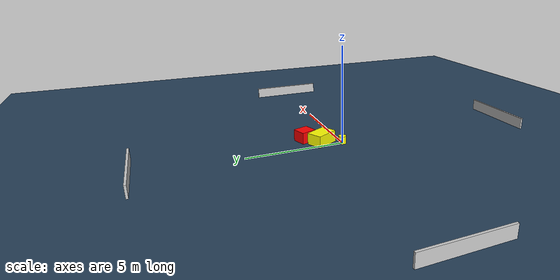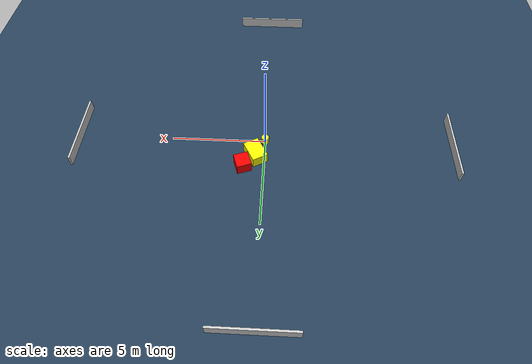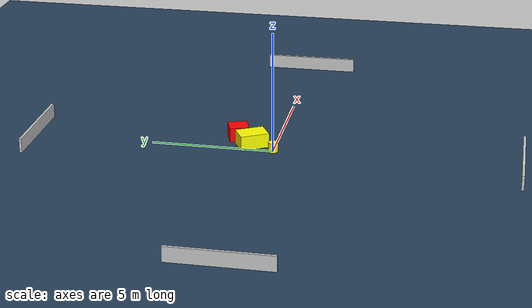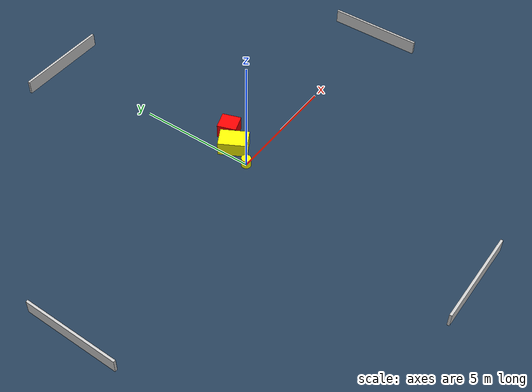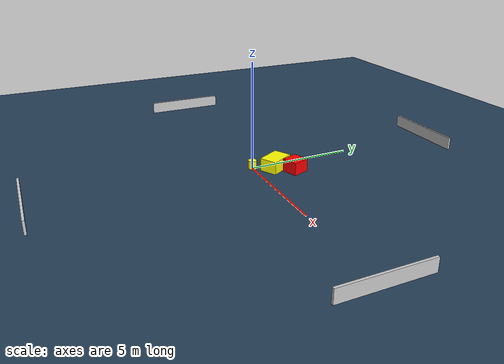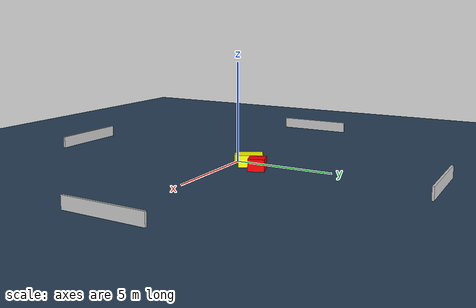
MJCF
<?xml version="1.0" ?>
<mujoco model="generated_environment">
  <option timestep="0.01" integrator="RK4" cone="elliptic"/>
  <default>
    <geom density="1"/>
  </default>
  <asset>
    <texture builtin="gradient" height="3072" name="skybox" rgb1="0.3 0.5 0.7" rgb2="0 0 0" type="skybox" width="512"/>
    <texture builtin="checker" height="300" name="groundplane" rgb1="0.2 0.3 0.4" rgb2="0.1 0.2 0.3" type="2d" width="300"/>
    <material name="groundplane" reflectance="0.2" texrepeat="5 5" texture="groundplane"/>
  </asset>
  <worldbody>
    <light dir="0 0 -1" directional="true" pos="0 0 1.5"/>
    <geom condim="3" friction="0.5 0.005 0.001" material="groundplane" name="floor" pos="0 0 0" size="0 0 0.05" type="plane"/>
    <body name="walls">
      <geom name="wall_1" condim="4" pos="-10.0 0.0 0.3" rgba="0.800000011920929 0.800000011920929 0.800000011920929 1.0" size="0.05 2.0 0.3" type="box"/>
      <geom name="wall_2" condim="4" pos="10.0 0.0 0.3" rgba="0.800000011920929 0.800000011920929 0.800000011920929 1.0" size="0.05 2.0 0.3" type="box"/>
      <geom name="wall_3" condim="4" pos="0.0 -10.0 0.3" rgba="0.800000011920929 0.800000011920929 0.800000011920929 1.0" size="2.0 0.05 0.3" type="box"/>
      <geom name="wall_4" condim="4" pos="0.0 10.0 0.3" rgba="0.800000011920929 0.800000011920929 0.800000011920929 1.0" size="2.0 0.05 0.3" type="box"/>
    </body>
    <body name="robot">
      <joint name="joint_x" type="slide" pos="0 0 0" axis="1 0 0"/>
      <joint name="joint_y" type="slide" pos="0 0 0" axis="0 1 0"/>
      <geom name="robot" type="cylinder" pos="0.0 0.0 0.2" size="0.2 0.2 0.0" mass="5.0" friction="1.0 0.005 0.0001" condim="4" rgba="1.0 1.0 0.0 1.0"/>
    </body>
    <body name="obstacle_1_movable">
      <geom name="obstacle_1_movable" condim="4" pos="0.46279071801415117 0.9588553496988375 0.3" euler="0 0 208.84281477230837" friction="0.0 0.005 0.001" rgba="1.0 1.0 0.0 1.0" size="0.4183331780581726 0.6000817145182529 0.3" type="box" mass="0.1"/>
      <joint type="free"/>
    </body>
    <body name="obstacle_2_static">
      <geom name="obstacle_2_static" condim="4" pos="1.093205855321681 1.6550348893008235 0.3" euler="0 0 109.12830621209673" friction="0.0 0.005 0.001" rgba="1.0 0.0 0.0 1.0" size="0.40114912716190626 0.38030213785115285 0.3" type="box"/>
    </body>
  </worldbody>
  <actuator>
    <motor name="actuator_x" joint="joint_x" gear="1" ctrlrange="-1 1"/>
    <motor name="actuator_y" joint="joint_y" gear="1" ctrlrange="-1 1"/>
  </actuator>
</mujoco>
